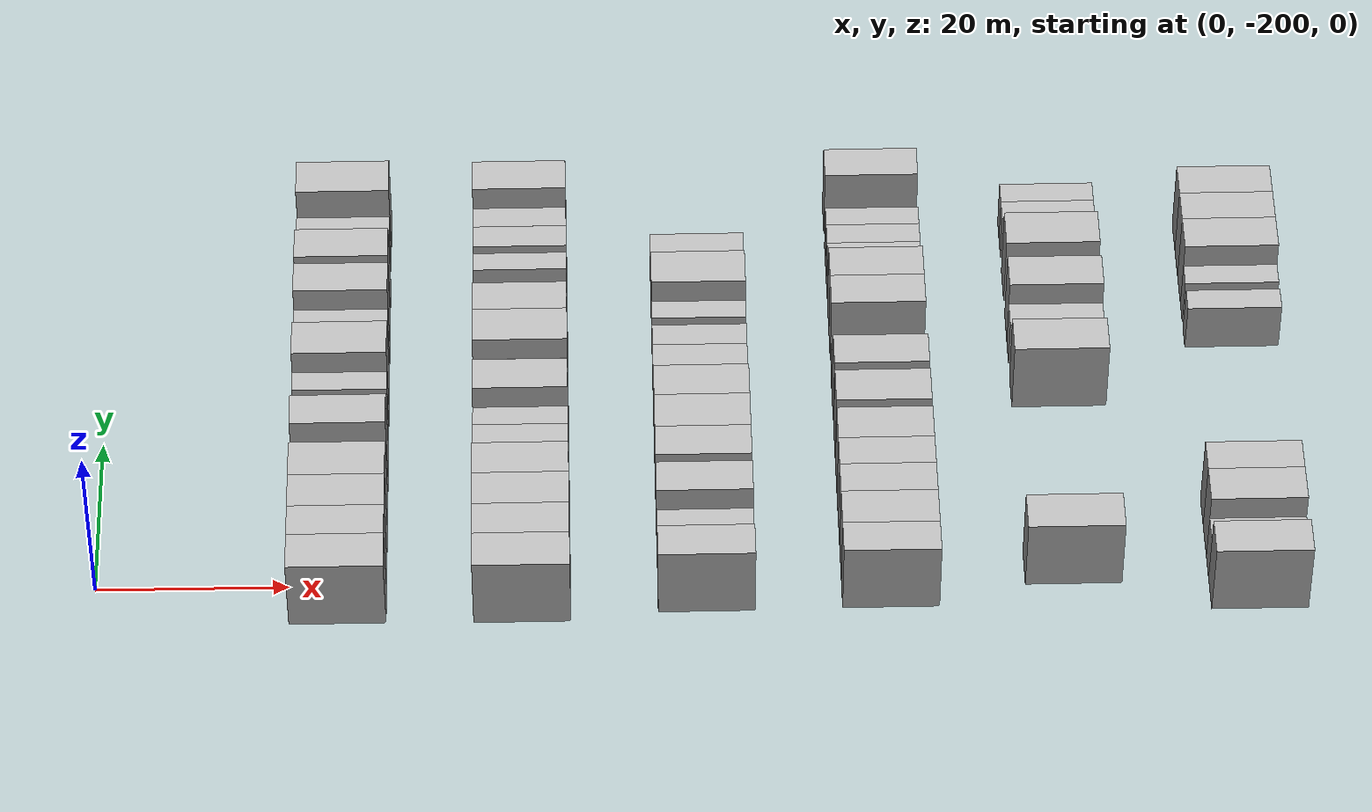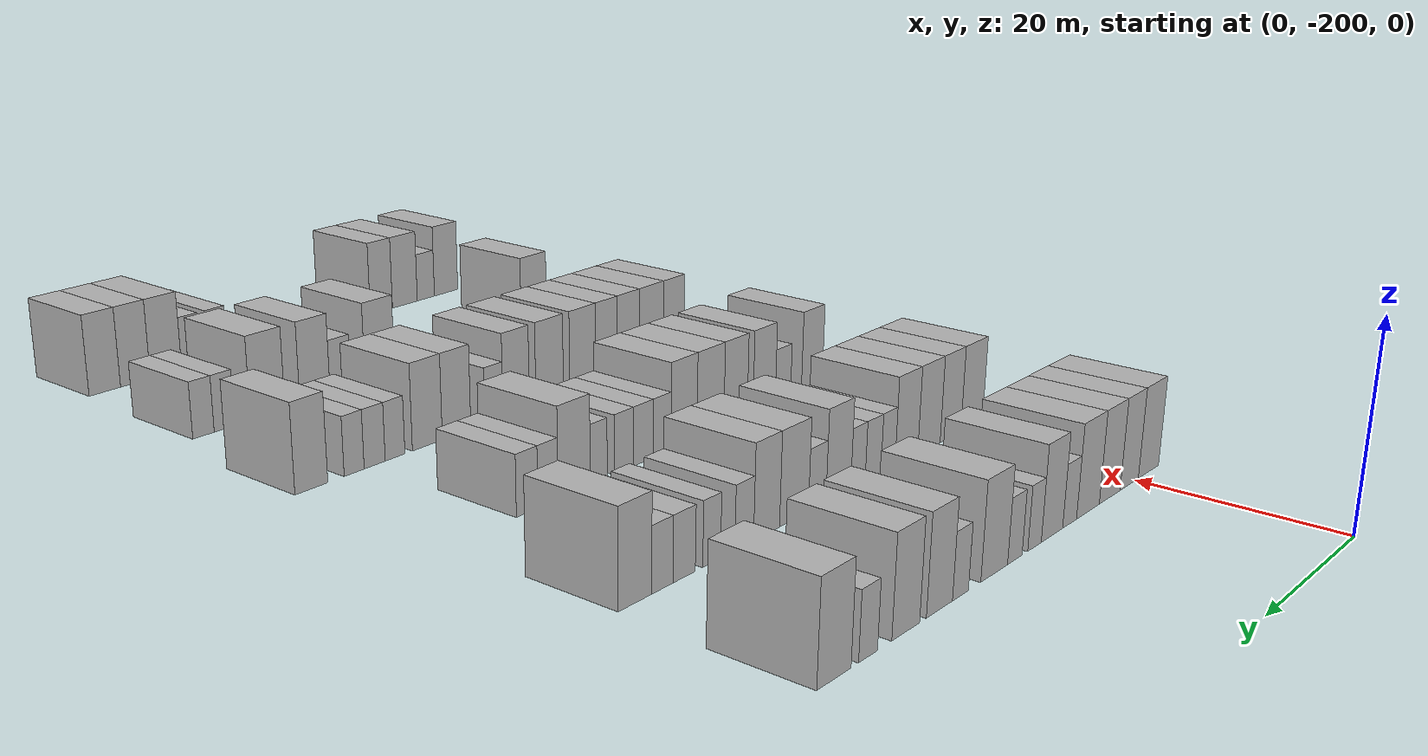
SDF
<sdf version="1.6">
 <world name="default">
  <model name="building_32">
   <static>1</static>
   <pose>25.0000 -202.8057 0 0.000000 0.000000 0.000000</pose>
   <link name="link">
    <pose>0 0 4.50 0 0 0</pose>
    <collision name="collision"><geometry><box><size>10.0000 4.4438 9.0000</size></box></geometry></collision>
    <visual name="visual">
     <cast_shadows>0</cast_shadows>
     <geometry><box><size>10.0000 4.4438 9.0000</size></box></geometry>
     <material>
      <script>
       <uri>model://HANNAS_wall/materials/scripts</uri>
       <uri>model://HANNAS_wall/materials/textures</uri>
       <name>vrc/HANNAS_wall</name>
      </script>
     </material>
    </visual>
   </link>
  </model>
  <model name="building_33">
   <static>1</static>
   <pose>25.0000 -198.6447 0 0.000000 0.000000 0.000000</pose>
   <link name="link">
    <pose>0 0 4.50 0 0 0</pose>
    <collision name="collision"><geometry><box><size>10.0000 3.8781 9.0000</size></box></geometry></collision>
    <visual name="visual">
     <cast_shadows>0</cast_shadows>
     <geometry><box><size>10.0000 3.8781 9.0000</size></box></geometry>
     <material>
      <script>
       <uri>model://HANNAS_wall/materials/scripts</uri>
       <uri>model://HANNAS_wall/materials/textures</uri>
       <name>vrc/HANNAS_wall</name>
      </script>
     </material>
    </visual>
   </link>
  </model>
  <model name="building_34">
   <static>1</static>
   <pose>25.0000 -194.5778 0 0.000000 0.000000 0.000000</pose>
   <link name="link">
    <pose>0 0 4.50 0 0 0</pose>
    <collision name="collision"><geometry><box><size>10.0000 4.2557 9.0000</size></box></geometry></collision>
    <visual name="visual">
     <cast_shadows>0</cast_shadows>
     <geometry><box><size>10.0000 4.2557 9.0000</size></box></geometry>
     <material>
      <script>
       <uri>model://HANNAS_wall/materials/scripts</uri>
       <uri>model://HANNAS_wall/materials/textures</uri>
       <name>vrc/HANNAS_wall</name>
      </script>
     </material>
    </visual>
   </link>
  </model>
  <model name="building_35">
   <static>1</static>
   <pose>25.0000 -190.2086 0 0.000000 0.000000 0.000000</pose>
   <link name="link">
    <pose>0 0 4.50 0 0 0</pose>
    <collision name="collision"><geometry><box><size>10.0000 4.4829 9.0000</size></box></geometry></collision>
    <visual name="visual">
     <cast_shadows>0</cast_shadows>
     <geometry><box><size>10.0000 4.4829 9.0000</size></box></geometry>
     <material>
      <script>
       <uri>model://HANNAS_wall/materials/scripts</uri>
       <uri>model://HANNAS_wall/materials/textures</uri>
       <name>vrc/HANNAS_wall</name>
      </script>
     </material>
    </visual>
   </link>
  </model>
  <model name="building_36">
   <static>1</static>
   <pose>25.0000 -186.6460 0 0.000000 0.000000 0.000000</pose>
   <link name="link">
    <pose>0 0 3.00 0 0 0</pose>
    <collision name="collision"><geometry><box><size>10.0000 2.6423 6.0000</size></box></geometry></collision>
    <visual name="visual">
     <cast_shadows>0</cast_shadows>
     <geometry><box><size>10.0000 2.6423 6.0000</size></box></geometry>
     <material>
      <script>
       <uri>model://HANNAS_wall/materials/scripts</uri>
       <uri>model://HANNAS_wall/materials/textures</uri>
       <name>vrc/HANNAS_wall</name>
      </script>
     </material>
    </visual>
   </link>
  </model>
  <model name="building_37">
   <static>1</static>
   <pose>25.0000 -183.3531 0 0.000000 0.000000 0.000000</pose>
   <link name="link">
    <pose>0 0 4.50 0 0 0</pose>
    <collision name="collision"><geometry><box><size>10.0000 3.9435 9.0000</size></box></geometry></collision>
    <visual name="visual">
     <cast_shadows>0</cast_shadows>
     <geometry><box><size>10.0000 3.9435 9.0000</size></box></geometry>
     <material>
      <script>
       <uri>model://HANNAS_wall/materials/scripts</uri>
       <uri>model://HANNAS_wall/materials/textures</uri>
       <name>vrc/HANNAS_wall</name>
      </script>
     </material>
    </visual>
   </link>
  </model>
  <model name="building_38">
   <static>1</static>
   <pose>25.0000 -180.1705 0 0.000000 0.000000 0.000000</pose>
   <link name="link">
    <pose>0 0 3.00 0 0 0</pose>
    <collision name="collision"><geometry><box><size>10.0000 2.4218 6.0000</size></box></geometry></collision>
    <visual name="visual">
     <cast_shadows>0</cast_shadows>
     <geometry><box><size>10.0000 2.4218 6.0000</size></box></geometry>
     <material>
      <script>
       <uri>model://HANNAS_wall/materials/scripts</uri>
       <uri>model://HANNAS_wall/materials/textures</uri>
       <name>vrc/HANNAS_wall</name>
      </script>
     </material>
    </visual>
   </link>
  </model>
  <model name="building_39">
   <static>1</static>
   <pose>25.0000 -176.7080 0 0.000000 0.000000 0.000000</pose>
   <link name="link">
    <pose>0 0 3.00 0 0 0</pose>
    <collision name="collision"><geometry><box><size>10.0000 2.5031 6.0000</size></box></geometry></collision>
    <visual name="visual">
     <cast_shadows>0</cast_shadows>
     <geometry><box><size>10.0000 2.5031 6.0000</size></box></geometry>
     <material>
      <script>
       <uri>model://HANNAS_wall/materials/scripts</uri>
       <uri>model://HANNAS_wall/materials/textures</uri>
       <name>vrc/HANNAS_wall</name>
      </script>
     </material>
    </visual>
   </link>
  </model>
  <model name="building_40">
   <static>1</static>
   <pose>25.0000 -173.2176 0 0.000000 0.000000 0.000000</pose>
   <link name="link">
    <pose>0 0 4.50 0 0 0</pose>
    <collision name="collision"><geometry><box><size>10.0000 4.4778 9.0000</size></box></geometry></collision>
    <visual name="visual">
     <cast_shadows>0</cast_shadows>
     <geometry><box><size>10.0000 4.4778 9.0000</size></box></geometry>
     <material>
      <script>
       <uri>model://HANNAS_wall/materials/scripts</uri>
       <uri>model://HANNAS_wall/materials/textures</uri>
       <name>vrc/HANNAS_wall</name>
      </script>
     </material>
    </visual>
   </link>
  </model>
  <model name="building_41">
   <static>1</static>
   <pose>25.0000 -167.7174 0 0.000000 0.000000 0.000000</pose>
   <link name="link">
    <pose>0 0 3.00 0 0 0</pose>
    <collision name="collision"><geometry><box><size>10.0000 2.5224 6.0000</size></box></geometry></collision>
    <visual name="visual">
     <cast_shadows>0</cast_shadows>
     <geometry><box><size>10.0000 2.5224 6.0000</size></box></geometry>
     <material>
      <script>
       <uri>model://HANNAS_wall/materials/scripts</uri>
       <uri>model://HANNAS_wall/materials/textures</uri>
       <name>vrc/HANNAS_wall</name>
      </script>
     </material>
    </visual>
   </link>
  </model>
  <model name="building_42">
   <static>1</static>
   <pose>25.0000 -164.4643 0 0.000000 0.000000 0.000000</pose>
   <link name="link">
    <pose>0 0 4.50 0 0 0</pose>
    <collision name="collision"><geometry><box><size>10.0000 3.9839 9.0000</size></box></geometry></collision>
    <visual name="visual">
     <cast_shadows>0</cast_shadows>
     <geometry><box><size>10.0000 3.9839 9.0000</size></box></geometry>
     <material>
      <script>
       <uri>model://HANNAS_wall/materials/scripts</uri>
       <uri>model://HANNAS_wall/materials/textures</uri>
       <name>vrc/HANNAS_wall</name>
      </script>
     </material>
    </visual>
   </link>
  </model>
  <model name="building_43">
   <static>1</static>
   <pose>25.0000 -159.4540 0 0.000000 0.000000 0.000000</pose>
   <link name="link">
    <pose>0 0 4.50 0 0 0</pose>
    <collision name="collision"><geometry><box><size>10.0000 4.0367 9.0000</size></box></geometry></collision>
    <visual name="visual">
     <cast_shadows>0</cast_shadows>
     <geometry><box><size>10.0000 4.0367 9.0000</size></box></geometry>
     <material>
      <script>
       <uri>model://HANNAS_wall/materials/scripts</uri>
       <uri>model://HANNAS_wall/materials/textures</uri>
       <name>vrc/HANNAS_wall</name>
      </script>
     </material>
    </visual>
   </link>
  </model>
  <model name="building_44">
   <static>1</static>
   <pose>25.0000 -154.1404 0 0.000000 0.000000 0.000000</pose>
   <link name="link">
    <pose>0 0 3.00 0 0 0</pose>
    <collision name="collision"><geometry><box><size>10.0000 2.5905 6.0000</size></box></geometry></collision>
    <visual name="visual">
     <cast_shadows>0</cast_shadows>
     <geometry><box><size>10.0000 2.5905 6.0000</size></box></geometry>
     <material>
      <script>
       <uri>model://HANNAS_wall/materials/scripts</uri>
       <uri>model://HANNAS_wall/materials/textures</uri>
       <name>vrc/HANNAS_wall</name>
      </script>
     </material>
    </visual>
   </link>
  </model>
  <model name="building_45">
   <static>1</static>
   <pose>25.0000 -149.6113 0 0.000000 0.000000 0.000000</pose>
   <link name="link">
    <pose>0 0 4.50 0 0 0</pose>
    <collision name="collision"><geometry><box><size>10.0000 4.4676 9.0000</size></box></geometry></collision>
    <visual name="visual">
     <cast_shadows>0</cast_shadows>
     <geometry><box><size>10.0000 4.4676 9.0000</size></box></geometry>
     <material>
      <script>
       <uri>model://HANNAS_wall/materials/scripts</uri>
       <uri>model://HANNAS_wall/materials/textures</uri>
       <name>vrc/HANNAS_wall</name>
      </script>
     </material>
    </visual>
   </link>
  </model>
  <model name="building_203">
   <static>1</static>
   <pose>44.0000 -203.0249 0 0.000000 0.000000 0.000000</pose>
   <link name="link">
    <pose>0 0 4.50 0 0 0</pose>
    <collision name="collision"><geometry><box><size>10.0000 4.3794 9.0000</size></box></geometry></collision>
    <visual name="visual">
     <cast_shadows>0</cast_shadows>
     <geometry><box><size>10.0000 4.3794 9.0000</size></box></geometry>
     <material>
      <script>
       <uri>model://HANNAS_wall/materials/scripts</uri>
       <uri>model://HANNAS_wall/materials/textures</uri>
       <name>vrc/HANNAS_wall</name>
      </script>
     </material>
    </visual>
   </link>
  </model>
  <model name="building_204">
   <static>1</static>
   <pose>44.0000 -198.8220 0 0.000000 0.000000 0.000000</pose>
   <link name="link">
    <pose>0 0 4.50 0 0 0</pose>
    <collision name="collision"><geometry><box><size>10.0000 4.0264 9.0000</size></box></geometry></collision>
    <visual name="visual">
     <cast_shadows>0</cast_shadows>
     <geometry><box><size>10.0000 4.0264 9.0000</size></box></geometry>
     <material>
      <script>
       <uri>model://HANNAS_wall/materials/scripts</uri>
       <uri>model://HANNAS_wall/materials/textures</uri>
       <name>vrc/HANNAS_wall</name>
      </script>
     </material>
    </visual>
   </link>
  </model>
  <model name="building_205">
   <static>1</static>
   <pose>44.0000 -194.6963 0 0.000000 0.000000 0.000000</pose>
   <link name="link">
    <pose>0 0 4.50 0 0 0</pose>
    <collision name="collision"><geometry><box><size>10.0000 4.2250 9.0000</size></box></geometry></collision>
    <visual name="visual">
     <cast_shadows>0</cast_shadows>
     <geometry><box><size>10.0000 4.2250 9.0000</size></box></geometry>
     <material>
      <script>
       <uri>model://HANNAS_wall/materials/scripts</uri>
       <uri>model://HANNAS_wall/materials/textures</uri>
       <name>vrc/HANNAS_wall</name>
      </script>
     </material>
    </visual>
   </link>
  </model>
  <model name="building_206">
   <static>1</static>
   <pose>44.0000 -190.5144 0 0.000000 0.000000 0.000000</pose>
   <link name="link">
    <pose>0 0 4.50 0 0 0</pose>
    <collision name="collision"><geometry><box><size>10.0000 4.1388 9.0000</size></box></geometry></collision>
    <visual name="visual">
     <cast_shadows>0</cast_shadows>
     <geometry><box><size>10.0000 4.1388 9.0000</size></box></geometry>
     <material>
      <script>
       <uri>model://HANNAS_wall/materials/scripts</uri>
       <uri>model://HANNAS_wall/materials/textures</uri>
       <name>vrc/HANNAS_wall</name>
      </script>
     </material>
    </visual>
   </link>
  </model>
  <model name="building_207">
   <static>1</static>
   <pose>44.0000 -187.1969 0 0.000000 0.000000 0.000000</pose>
   <link name="link">
    <pose>0 0 3.00 0 0 0</pose>
    <collision name="collision"><geometry><box><size>10.0000 2.4963 6.0000</size></box></geometry></collision>
    <visual name="visual">
     <cast_shadows>0</cast_shadows>
     <geometry><box><size>10.0000 2.4963 6.0000</size></box></geometry>
     <material>
      <script>
       <uri>model://HANNAS_wall/materials/scripts</uri>
       <uri>model://HANNAS_wall/materials/textures</uri>
       <name>vrc/HANNAS_wall</name>
      </script>
     </material>
    </visual>
   </link>
  </model>
  <model name="building_208">
   <static>1</static>
   <pose>44.0000 -184.5957 0 0.000000 0.000000 0.000000</pose>
   <link name="link">
    <pose>0 0 3.00 0 0 0</pose>
    <collision name="collision"><geometry><box><size>10.0000 2.7060 6.0000</size></box></geometry></collision>
    <visual name="visual">
     <cast_shadows>0</cast_shadows>
     <geometry><box><size>10.0000 2.7060 6.0000</size></box></geometry>
     <material>
      <script>
       <uri>model://HANNAS_wall/materials/scripts</uri>
       <uri>model://HANNAS_wall/materials/textures</uri>
       <name>vrc/HANNAS_wall</name>
      </script>
     </material>
    </visual>
   </link>
  </model>
  <model name="building_209">
   <static>1</static>
   <pose>44.0000 -182.0230 0 0.000000 0.000000 0.000000</pose>
   <link name="link">
    <pose>0 0 3.00 0 0 0</pose>
    <collision name="collision"><geometry><box><size>10.0000 2.4394 6.0000</size></box></geometry></collision>
    <visual name="visual">
     <cast_shadows>0</cast_shadows>
     <geometry><box><size>10.0000 2.4394 6.0000</size></box></geometry>
     <material>
      <script>
       <uri>model://HANNAS_wall/materials/scripts</uri>
       <uri>model://HANNAS_wall/materials/textures</uri>
       <name>vrc/HANNAS_wall</name>
      </script>
     </material>
    </visual>
   </link>
  </model>
  <model name="building_210">
   <static>1</static>
   <pose>44.0000 -178.7733 0 0.000000 0.000000 0.000000</pose>
   <link name="link">
    <pose>0 0 4.50 0 0 0</pose>
    <collision name="collision"><geometry><box><size>10.0000 4.0601 9.0000</size></box></geometry></collision>
    <visual name="visual">
     <cast_shadows>0</cast_shadows>
     <geometry><box><size>10.0000 4.0601 9.0000</size></box></geometry>
     <material>
      <script>
       <uri>model://HANNAS_wall/materials/scripts</uri>
       <uri>model://HANNAS_wall/materials/textures</uri>
       <name>vrc/HANNAS_wall</name>
      </script>
     </material>
    </visual>
   </link>
  </model>
  <model name="building_211">
   <static>1</static>
   <pose>44.0000 -175.3541 0 0.000000 0.000000 0.000000</pose>
   <link name="link">
    <pose>0 0 3.00 0 0 0</pose>
    <collision name="collision"><geometry><box><size>10.0000 2.7781 6.0000</size></box></geometry></collision>
    <visual name="visual">
     <cast_shadows>0</cast_shadows>
     <geometry><box><size>10.0000 2.7781 6.0000</size></box></geometry>
     <material>
      <script>
       <uri>model://HANNAS_wall/materials/scripts</uri>
       <uri>model://HANNAS_wall/materials/textures</uri>
       <name>vrc/HANNAS_wall</name>
      </script>
     </material>
    </visual>
   </link>
  </model>
  <model name="building_212">
   <static>1</static>
   <pose>44.0000 -171.7496 0 0.000000 0.000000 0.000000</pose>
   <link name="link">
    <pose>0 0 4.50 0 0 0</pose>
    <collision name="collision"><geometry><box><size>10.0000 4.4309 9.0000</size></box></geometry></collision>
    <visual name="visual">
     <cast_shadows>0</cast_shadows>
     <geometry><box><size>10.0000 4.4309 9.0000</size></box></geometry>
     <material>
      <script>
       <uri>model://HANNAS_wall/materials/scripts</uri>
       <uri>model://HANNAS_wall/materials/textures</uri>
       <name>vrc/HANNAS_wall</name>
      </script>
     </material>
    </visual>
   </link>
  </model>
  <model name="building_213">
   <static>1</static>
   <pose>44.0000 -167.6110 0 0.000000 0.000000 0.000000</pose>
   <link name="link">
    <pose>0 0 4.50 0 0 0</pose>
    <collision name="collision"><geometry><box><size>10.0000 3.8465 9.0000</size></box></geometry></collision>
    <visual name="visual">
     <cast_shadows>0</cast_shadows>
     <geometry><box><size>10.0000 3.8465 9.0000</size></box></geometry>
     <material>
      <script>
       <uri>model://HANNAS_wall/materials/scripts</uri>
       <uri>model://HANNAS_wall/materials/textures</uri>
       <name>vrc/HANNAS_wall</name>
      </script>
     </material>
    </visual>
   </link>
  </model>
  <model name="building_214">
   <static>1</static>
   <pose>44.0000 -164.3447 0 0.000000 0.000000 0.000000</pose>
   <link name="link">
    <pose>0 0 3.00 0 0 0</pose>
    <collision name="collision"><geometry><box><size>10.0000 2.6861 6.0000</size></box></geometry></collision>
    <visual name="visual">
     <cast_shadows>0</cast_shadows>
     <geometry><box><size>10.0000 2.6861 6.0000</size></box></geometry>
     <material>
      <script>
       <uri>model://HANNAS_wall/materials/scripts</uri>
       <uri>model://HANNAS_wall/materials/textures</uri>
       <name>vrc/HANNAS_wall</name>
      </script>
     </material>
    </visual>
   </link>
  </model>
  <model name="building_215">
   <static>1</static>
   <pose>44.0000 -159.7819 0 0.000000 0.000000 0.000000</pose>
   <link name="link">
    <pose>0 0 3.00 0 0 0</pose>
    <collision name="collision"><geometry><box><size>10.0000 2.4393 6.0000</size></box></geometry></collision>
    <visual name="visual">
     <cast_shadows>0</cast_shadows>
     <geometry><box><size>10.0000 2.4393 6.0000</size></box></geometry>
     <material>
      <script>
       <uri>model://HANNAS_wall/materials/scripts</uri>
       <uri>model://HANNAS_wall/materials/textures</uri>
       <name>vrc/HANNAS_wall</name>
      </script>
     </material>
    </visual>
   </link>
  </model>
  <model name="building_216">
   <static>1</static>
   <pose>44.0000 -156.0849 0 0.000000 0.000000 0.000000</pose>
   <link name="link">
    <pose>0 0 3.00 0 0 0</pose>
    <collision name="collision"><geometry><box><size>10.0000 2.9549 6.0000</size></box></geometry></collision>
    <visual name="visual">
     <cast_shadows>0</cast_shadows>
     <geometry><box><size>10.0000 2.9549 6.0000</size></box></geometry>
     <material>
      <script>
       <uri>model://HANNAS_wall/materials/scripts</uri>
       <uri>model://HANNAS_wall/materials/textures</uri>
       <name>vrc/HANNAS_wall</name>
      </script>
     </material>
    </visual>
   </link>
  </model>
  <model name="building_217">
   <static>1</static>
   <pose>44.0000 -153.2382 0 0.000000 0.000000 0.000000</pose>
   <link name="link">
    <pose>0 0 3.00 0 0 0</pose>
    <collision name="collision"><geometry><box><size>10.0000 2.7384 6.0000</size></box></geometry></collision>
    <visual name="visual">
     <cast_shadows>0</cast_shadows>
     <geometry><box><size>10.0000 2.7384 6.0000</size></box></geometry>
     <material>
      <script>
       <uri>model://HANNAS_wall/materials/scripts</uri>
       <uri>model://HANNAS_wall/materials/textures</uri>
       <name>vrc/HANNAS_wall</name>
      </script>
     </material>
    </visual>
   </link>
  </model>
  <model name="building_218">
   <static>1</static>
   <pose>44.0000 -149.8097 0 0.000000 0.000000 0.000000</pose>
   <link name="link">
    <pose>0 0 4.50 0 0 0</pose>
    <collision name="collision"><geometry><box><size>10.0000 4.1187 9.0000</size></box></geometry></collision>
    <visual name="visual">
     <cast_shadows>0</cast_shadows>
     <geometry><box><size>10.0000 4.1187 9.0000</size></box></geometry>
     <material>
      <script>
       <uri>model://HANNAS_wall/materials/scripts</uri>
       <uri>model://HANNAS_wall/materials/textures</uri>
       <name>vrc/HANNAS_wall</name>
      </script>
     </material>
    </visual>
   </link>
  </model>
  <model name="building_366">
   <static>1</static>
   <pose>63.0000 -202.2333 0 0.000000 0.000000 0.000000</pose>
   <link name="link">
    <pose>0 0 4.50 0 0 0</pose>
    <collision name="collision"><geometry><box><size>10.0000 3.9475 9.0000</size></box></geometry></collision>
    <visual name="visual">
     <cast_shadows>0</cast_shadows>
     <geometry><box><size>10.0000 3.9475 9.0000</size></box></geometry>
     <material>
      <script>
       <uri>model://HANNAS_wall/materials/scripts</uri>
       <uri>model://HANNAS_wall/materials/textures</uri>
       <name>vrc/HANNAS_wall</name>
      </script>
     </material>
    </visual>
   </link>
  </model>
  <model name="building_367">
   <static>1</static>
   <pose>63.0000 -196.8638 0 0.000000 0.000000 0.000000</pose>
   <link name="link">
    <pose>0 0 3.00 0 0 0</pose>
    <collision name="collision"><geometry><box><size>10.0000 2.7915 6.0000</size></box></geometry></collision>
    <visual name="visual">
     <cast_shadows>0</cast_shadows>
     <geometry><box><size>10.0000 2.7915 6.0000</size></box></geometry>
     <material>
      <script>
       <uri>model://HANNAS_wall/materials/scripts</uri>
       <uri>model://HANNAS_wall/materials/textures</uri>
       <name>vrc/HANNAS_wall</name>
      </script>
     </material>
    </visual>
   </link>
  </model>
  <model name="building_368">
   <static>1</static>
   <pose>63.0000 -193.4971 0 0.000000 0.000000 0.000000</pose>
   <link name="link">
    <pose>0 0 4.50 0 0 0</pose>
    <collision name="collision"><geometry><box><size>10.0000 3.9419 9.0000</size></box></geometry></collision>
    <visual name="visual">
     <cast_shadows>0</cast_shadows>
     <geometry><box><size>10.0000 3.9419 9.0000</size></box></geometry>
     <material>
      <script>
       <uri>model://HANNAS_wall/materials/scripts</uri>
       <uri>model://HANNAS_wall/materials/textures</uri>
       <name>vrc/HANNAS_wall</name>
      </script>
     </material>
    </visual>
   </link>
  </model>
  <model name="building_369">
   <static>1</static>
   <pose>63.0000 -188.5421 0 0.000000 0.000000 0.000000</pose>
   <link name="link">
    <pose>0 0 4.50 0 0 0</pose>
    <collision name="collision"><geometry><box><size>10.0000 3.9681 9.0000</size></box></geometry></collision>
    <visual name="visual">
     <cast_shadows>0</cast_shadows>
     <geometry><box><size>10.0000 3.9681 9.0000</size></box></geometry>
     <material>
      <script>
       <uri>model://HANNAS_wall/materials/scripts</uri>
       <uri>model://HANNAS_wall/materials/textures</uri>
       <name>vrc/HANNAS_wall</name>
      </script>
     </material>
    </visual>
   </link>
  </model>
  <model name="building_370">
   <static>1</static>
   <pose>63.0000 -184.3372 0 0.000000 0.000000 0.000000</pose>
   <link name="link">
    <pose>0 0 4.50 0 0 0</pose>
    <collision name="collision"><geometry><box><size>10.0000 4.4418 9.0000</size></box></geometry></collision>
    <visual name="visual">
     <cast_shadows>0</cast_shadows>
     <geometry><box><size>10.0000 4.4418 9.0000</size></box></geometry>
     <material>
      <script>
       <uri>model://HANNAS_wall/materials/scripts</uri>
       <uri>model://HANNAS_wall/materials/textures</uri>
       <name>vrc/HANNAS_wall</name>
      </script>
     </material>
    </visual>
   </link>
  </model>
  <model name="building_371">
   <static>1</static>
   <pose>63.0000 -180.0531 0 0.000000 0.000000 0.000000</pose>
   <link name="link">
    <pose>0 0 4.50 0 0 0</pose>
    <collision name="collision"><geometry><box><size>10.0000 4.1262 9.0000</size></box></geometry></collision>
    <visual name="visual">
     <cast_shadows>0</cast_shadows>
     <geometry><box><size>10.0000 4.1262 9.0000</size></box></geometry>
     <material>
      <script>
       <uri>model://HANNAS_wall/materials/scripts</uri>
       <uri>model://HANNAS_wall/materials/textures</uri>
       <name>vrc/HANNAS_wall</name>
      </script>
     </material>
    </visual>
   </link>
  </model>
  <model name="building_372">
   <static>1</static>
   <pose>63.0000 -176.6253 0 0.000000 0.000000 0.000000</pose>
   <link name="link">
    <pose>0 0 3.00 0 0 0</pose>
    <collision name="collision"><geometry><box><size>10.0000 2.7295 6.0000</size></box></geometry></collision>
    <visual name="visual">
     <cast_shadows>0</cast_shadows>
     <geometry><box><size>10.0000 2.7295 6.0000</size></box></geometry>
     <material>
      <script>
       <uri>model://HANNAS_wall/materials/scripts</uri>
       <uri>model://HANNAS_wall/materials/textures</uri>
       <name>vrc/HANNAS_wall</name>
      </script>
     </material>
    </visual>
   </link>
  </model>
  <model name="building_373">
   <static>1</static>
   <pose>63.0000 -173.7783 0 0.000000 0.000000 0.000000</pose>
   <link name="link">
    <pose>0 0 3.00 0 0 0</pose>
    <collision name="collision"><geometry><box><size>10.0000 2.9644 6.0000</size></box></geometry></collision>
    <visual name="visual">
     <cast_shadows>0</cast_shadows>
     <geometry><box><size>10.0000 2.9644 6.0000</size></box></geometry>
     <material>
      <script>
       <uri>model://HANNAS_wall/materials/scripts</uri>
       <uri>model://HANNAS_wall/materials/textures</uri>
       <name>vrc/HANNAS_wall</name>
      </script>
     </material>
    </visual>
   </link>
  </model>
  <model name="building_374">
   <static>1</static>
   <pose>63.0000 -170.8783 0 0.000000 0.000000 0.000000</pose>
   <link name="link">
    <pose>0 0 3.00 0 0 0</pose>
    <collision name="collision"><geometry><box><size>10.0000 2.8356 6.0000</size></box></geometry></collision>
    <visual name="visual">
     <cast_shadows>0</cast_shadows>
     <geometry><box><size>10.0000 2.8356 6.0000</size></box></geometry>
     <material>
      <script>
       <uri>model://HANNAS_wall/materials/scripts</uri>
       <uri>model://HANNAS_wall/materials/textures</uri>
       <name>vrc/HANNAS_wall</name>
      </script>
     </material>
    </visual>
   </link>
  </model>
  <model name="building_375">
   <static>1</static>
   <pose>63.0000 -167.2489 0 0.000000 0.000000 0.000000</pose>
   <link name="link">
    <pose>0 0 3.00 0 0 0</pose>
    <collision name="collision"><geometry><box><size>10.0000 2.4234 6.0000</size></box></geometry></collision>
    <visual name="visual">
     <cast_shadows>0</cast_shadows>
     <geometry><box><size>10.0000 2.4234 6.0000</size></box></geometry>
     <material>
      <script>
       <uri>model://HANNAS_wall/materials/scripts</uri>
       <uri>model://HANNAS_wall/materials/textures</uri>
       <name>vrc/HANNAS_wall</name>
      </script>
     </material>
    </visual>
   </link>
  </model>
  <model name="building_376">
   <static>1</static>
   <pose>63.0000 -163.8189 0 0.000000 0.000000 0.000000</pose>
   <link name="link">
    <pose>0 0 4.50 0 0 0</pose>
    <collision name="collision"><geometry><box><size>10.0000 4.4367 9.0000</size></box></geometry></collision>
    <visual name="visual">
     <cast_shadows>0</cast_shadows>
     <geometry><box><size>10.0000 4.4367 9.0000</size></box></geometry>
     <material>
      <script>
       <uri>model://HANNAS_wall/materials/scripts</uri>
       <uri>model://HANNAS_wall/materials/textures</uri>
       <name>vrc/HANNAS_wall</name>
      </script>
     </material>
    </visual>
   </link>
  </model>
  <model name="building_377">
   <static>1</static>
   <pose>63.0000 -160.2628 0 0.000000 0.000000 0.000000</pose>
   <link name="link">
    <pose>0 0 3.00 0 0 0</pose>
    <collision name="collision"><geometry><box><size>10.0000 2.6754 6.0000</size></box></geometry></collision>
    <visual name="visual">
     <cast_shadows>0</cast_shadows>
     <geometry><box><size>10.0000 2.6754 6.0000</size></box></geometry>
     <material>
      <script>
       <uri>model://HANNAS_wall/materials/scripts</uri>
       <uri>model://HANNAS_wall/materials/textures</uri>
       <name>vrc/HANNAS_wall</name>
      </script>
     </material>
    </visual>
   </link>
  </model>
  <model name="building_378">
   <static>1</static>
   <pose>63.0000 -157.5310 0 0.000000 0.000000 0.000000</pose>
   <link name="link">
    <pose>0 0 3.00 0 0 0</pose>
    <collision name="collision"><geometry><box><size>10.0000 2.7882 6.0000</size></box></geometry></collision>
    <visual name="visual">
     <cast_shadows>0</cast_shadows>
     <geometry><box><size>10.0000 2.7882 6.0000</size></box></geometry>
     <material>
      <script>
       <uri>model://HANNAS_wall/materials/scripts</uri>
       <uri>model://HANNAS_wall/materials/textures</uri>
       <name>vrc/HANNAS_wall</name>
      </script>
     </material>
    </visual>
   </link>
  </model>
  <model name="building_545">
   <static>1</static>
   <pose>82.0000 -202.1658 0 0.000000 0.000000 0.000000</pose>
   <link name="link">
    <pose>0 0 4.50 0 0 0</pose>
    <collision name="collision"><geometry><box><size>10.0000 3.8075 9.0000</size></box></geometry></collision>
    <visual name="visual">
     <cast_shadows>0</cast_shadows>
     <geometry><box><size>10.0000 3.8075 9.0000</size></box></geometry>
     <material>
      <script>
       <uri>model://HANNAS_wall/materials/scripts</uri>
       <uri>model://HANNAS_wall/materials/textures</uri>
       <name>vrc/HANNAS_wall</name>
      </script>
     </material>
    </visual>
   </link>
  </model>
  <model name="building_546">
   <static>1</static>
   <pose>82.0000 -198.1142 0 0.000000 0.000000 0.000000</pose>
   <link name="link">
    <pose>0 0 4.50 0 0 0</pose>
    <collision name="collision"><geometry><box><size>10.0000 4.2955 9.0000</size></box></geometry></collision>
    <visual name="visual">
     <cast_shadows>0</cast_shadows>
     <geometry><box><size>10.0000 4.2955 9.0000</size></box></geometry>
     <material>
      <script>
       <uri>model://HANNAS_wall/materials/scripts</uri>
       <uri>model://HANNAS_wall/materials/textures</uri>
       <name>vrc/HANNAS_wall</name>
      </script>
     </material>
    </visual>
   </link>
  </model>
  <model name="building_547">
   <static>1</static>
   <pose>82.0000 -194.0944 0 0.000000 0.000000 0.000000</pose>
   <link name="link">
    <pose>0 0 4.50 0 0 0</pose>
    <collision name="collision"><geometry><box><size>10.0000 3.7442 9.0000</size></box></geometry></collision>
    <visual name="visual">
     <cast_shadows>0</cast_shadows>
     <geometry><box><size>10.0000 3.7442 9.0000</size></box></geometry>
     <material>
      <script>
       <uri>model://HANNAS_wall/materials/scripts</uri>
       <uri>model://HANNAS_wall/materials/textures</uri>
       <name>vrc/HANNAS_wall</name>
      </script>
     </material>
    </visual>
   </link>
  </model>
  <model name="building_548">
   <static>1</static>
   <pose>82.0000 -190.4050 0 0.000000 0.000000 0.000000</pose>
   <link name="link">
    <pose>0 0 4.50 0 0 0</pose>
    <collision name="collision"><geometry><box><size>10.0000 3.6348 9.0000</size></box></geometry></collision>
    <visual name="visual">
     <cast_shadows>0</cast_shadows>
     <geometry><box><size>10.0000 3.6348 9.0000</size></box></geometry>
     <material>
      <script>
       <uri>model://HANNAS_wall/materials/scripts</uri>
       <uri>model://HANNAS_wall/materials/textures</uri>
       <name>vrc/HANNAS_wall</name>
      </script>
     </material>
    </visual>
   </link>
  </model>
  <model name="building_549">
   <static>1</static>
   <pose>82.0000 -186.4735 0 0.000000 0.000000 0.000000</pose>
   <link name="link">
    <pose>0 0 4.50 0 0 0</pose>
    <collision name="collision"><geometry><box><size>10.0000 4.2282 9.0000</size></box></geometry></collision>
    <visual name="visual">
     <cast_shadows>0</cast_shadows>
     <geometry><box><size>10.0000 4.2282 9.0000</size></box></geometry>
     <material>
      <script>
       <uri>model://HANNAS_wall/materials/scripts</uri>
       <uri>model://HANNAS_wall/materials/textures</uri>
       <name>vrc/HANNAS_wall</name>
      </script>
     </material>
    </visual>
   </link>
  </model>
  <model name="building_550">
   <static>1</static>
   <pose>82.0000 -181.2136 0 0.000000 0.000000 0.000000</pose>
   <link name="link">
    <pose>0 0 4.50 0 0 0</pose>
    <collision name="collision"><geometry><box><size>10.0000 4.2916 9.0000</size></box></geometry></collision>
    <visual name="visual">
     <cast_shadows>0</cast_shadows>
     <geometry><box><size>10.0000 4.2916 9.0000</size></box></geometry>
     <material>
      <script>
       <uri>model://HANNAS_wall/materials/scripts</uri>
       <uri>model://HANNAS_wall/materials/textures</uri>
       <name>vrc/HANNAS_wall</name>
      </script>
     </material>
    </visual>
   </link>
  </model>
  <model name="building_551">
   <static>1</static>
   <pose>82.0000 -176.0914 0 0.000000 0.000000 0.000000</pose>
   <link name="link">
    <pose>0 0 4.50 0 0 0</pose>
    <collision name="collision"><geometry><box><size>10.0000 3.9528 9.0000</size></box></geometry></collision>
    <visual name="visual">
     <cast_shadows>0</cast_shadows>
     <geometry><box><size>10.0000 3.9528 9.0000</size></box></geometry>
     <material>
      <script>
       <uri>model://HANNAS_wall/materials/scripts</uri>
       <uri>model://HANNAS_wall/materials/textures</uri>
       <name>vrc/HANNAS_wall</name>
      </script>
     </material>
    </visual>
   </link>
  </model>
  <model name="building_552">
   <static>1</static>
   <pose>82.0000 -172.7834 0 0.000000 0.000000 0.000000</pose>
   <link name="link">
    <pose>0 0 3.00 0 0 0</pose>
    <collision name="collision"><geometry><box><size>10.0000 2.6631 6.0000</size></box></geometry></collision>
    <visual name="visual">
     <cast_shadows>0</cast_shadows>
     <geometry><box><size>10.0000 2.6631 6.0000</size></box></geometry>
     <material>
      <script>
       <uri>model://HANNAS_wall/materials/scripts</uri>
       <uri>model://HANNAS_wall/materials/textures</uri>
       <name>vrc/HANNAS_wall</name>
      </script>
     </material>
    </visual>
   </link>
  </model>
  <model name="building_553">
   <static>1</static>
   <pose>82.0000 -167.4585 0 0.000000 0.000000 0.000000</pose>
   <link name="link">
    <pose>0 0 4.50 0 0 0</pose>
    <collision name="collision"><geometry><box><size>10.0000 3.9868 9.0000</size></box></geometry></collision>
    <visual name="visual">
     <cast_shadows>0</cast_shadows>
     <geometry><box><size>10.0000 3.9868 9.0000</size></box></geometry>
     <material>
      <script>
       <uri>model://HANNAS_wall/materials/scripts</uri>
       <uri>model://HANNAS_wall/materials/textures</uri>
       <name>vrc/HANNAS_wall</name>
      </script>
     </material>
    </visual>
   </link>
  </model>
  <model name="building_554">
   <static>1</static>
   <pose>82.0000 -163.4401 0 0.000000 0.000000 0.000000</pose>
   <link name="link">
    <pose>0 0 4.50 0 0 0</pose>
    <collision name="collision"><geometry><box><size>10.0000 4.0499 9.0000</size></box></geometry></collision>
    <visual name="visual">
     <cast_shadows>0</cast_shadows>
     <geometry><box><size>10.0000 4.0499 9.0000</size></box></geometry>
     <material>
      <script>
       <uri>model://HANNAS_wall/materials/scripts</uri>
       <uri>model://HANNAS_wall/materials/textures</uri>
       <name>vrc/HANNAS_wall</name>
      </script>
     </material>
    </visual>
   </link>
  </model>
  <model name="building_555">
   <static>1</static>
   <pose>82.0000 -159.1333 0 0.000000 0.000000 0.000000</pose>
   <link name="link">
    <pose>0 0 3.00 0 0 0</pose>
    <collision name="collision"><geometry><box><size>10.0000 2.5637 6.0000</size></box></geometry></collision>
    <visual name="visual">
     <cast_shadows>0</cast_shadows>
     <geometry><box><size>10.0000 2.5637 6.0000</size></box></geometry>
     <material>
      <script>
       <uri>model://HANNAS_wall/materials/scripts</uri>
       <uri>model://HANNAS_wall/materials/textures</uri>
       <name>vrc/HANNAS_wall</name>
      </script>
     </material>
    </visual>
   </link>
  </model>
  <model name="building_556">
   <static>1</static>
   <pose>82.0000 -156.5078 0 0.000000 0.000000 0.000000</pose>
   <link name="link">
    <pose>0 0 3.00 0 0 0</pose>
    <collision name="collision"><geometry><box><size>10.0000 2.6872 6.0000</size></box></geometry></collision>
    <visual name="visual">
     <cast_shadows>0</cast_shadows>
     <geometry><box><size>10.0000 2.6872 6.0000</size></box></geometry>
     <material>
      <script>
       <uri>model://HANNAS_wall/materials/scripts</uri>
       <uri>model://HANNAS_wall/materials/textures</uri>
       <name>vrc/HANNAS_wall</name>
      </script>
     </material>
    </visual>
   </link>
  </model>
  <model name="building_557">
   <static>1</static>
   <pose>82.0000 -153.9178 0 0.000000 0.000000 0.000000</pose>
   <link name="link">
    <pose>0 0 3.00 0 0 0</pose>
    <collision name="collision"><geometry><box><size>10.0000 2.4927 6.0000</size></box></geometry></collision>
    <visual name="visual">
     <cast_shadows>0</cast_shadows>
     <geometry><box><size>10.0000 2.4927 6.0000</size></box></geometry>
     <material>
      <script>
       <uri>model://HANNAS_wall/materials/scripts</uri>
       <uri>model://HANNAS_wall/materials/textures</uri>
       <name>vrc/HANNAS_wall</name>
      </script>
     </material>
    </visual>
   </link>
  </model>
  <model name="building_558">
   <static>1</static>
   <pose>82.0000 -148.7091 0 0.000000 0.000000 0.000000</pose>
   <link name="link">
    <pose>0 0 4.50 0 0 0</pose>
    <collision name="collision"><geometry><box><size>10.0000 3.9247 9.0000</size></box></geometry></collision>
    <visual name="visual">
     <cast_shadows>0</cast_shadows>
     <geometry><box><size>10.0000 3.9247 9.0000</size></box></geometry>
     <material>
      <script>
       <uri>model://HANNAS_wall/materials/scripts</uri>
       <uri>model://HANNAS_wall/materials/textures</uri>
       <name>vrc/HANNAS_wall</name>
      </script>
     </material>
    </visual>
   </link>
  </model>
  <model name="building_717">
   <static>1</static>
   <pose>101.0000 -199.1214 0 0.000000 0.000000 0.000000</pose>
   <link name="link">
    <pose>0 0 4.50 0 0 0</pose>
    <collision name="collision"><geometry><box><size>10.0000 4.4040 9.0000</size></box></geometry></collision>
    <visual name="visual">
     <cast_shadows>0</cast_shadows>
     <geometry><box><size>10.0000 4.4040 9.0000</size></box></geometry>
     <material>
      <script>
       <uri>model://HANNAS_wall/materials/scripts</uri>
       <uri>model://HANNAS_wall/materials/textures</uri>
       <name>vrc/HANNAS_wall</name>
      </script>
     </material>
    </visual>
   </link>
  </model>
  <model name="building_718">
   <static>1</static>
   <pose>101.0000 -174.4298 0 0.000000 0.000000 0.000000</pose>
   <link name="link">
    <pose>0 0 4.50 0 0 0</pose>
    <collision name="collision"><geometry><box><size>10.0000 4.3264 9.0000</size></box></geometry></collision>
    <visual name="visual">
     <cast_shadows>0</cast_shadows>
     <geometry><box><size>10.0000 4.3264 9.0000</size></box></geometry>
     <material>
      <script>
       <uri>model://HANNAS_wall/materials/scripts</uri>
       <uri>model://HANNAS_wall/materials/textures</uri>
       <name>vrc/HANNAS_wall</name>
      </script>
     </material>
    </visual>
   </link>
  </model>
  <model name="building_719">
   <static>1</static>
   <pose>101.0000 -168.7867 0 0.000000 0.000000 0.000000</pose>
   <link name="link">
    <pose>0 0 3.00 0 0 0</pose>
    <collision name="collision"><geometry><box><size>10.0000 2.9597 6.0000</size></box></geometry></collision>
    <visual name="visual">
     <cast_shadows>0</cast_shadows>
     <geometry><box><size>10.0000 2.9597 6.0000</size></box></geometry>
     <material>
      <script>
       <uri>model://HANNAS_wall/materials/scripts</uri>
       <uri>model://HANNAS_wall/materials/textures</uri>
       <name>vrc/HANNAS_wall</name>
      </script>
     </material>
    </visual>
   </link>
  </model>
  <model name="building_720">
   <static>1</static>
   <pose>101.0000 -165.2390 0 0.000000 0.000000 0.000000</pose>
   <link name="link">
    <pose>0 0 4.50 0 0 0</pose>
    <collision name="collision"><geometry><box><size>10.0000 4.1358 9.0000</size></box></geometry></collision>
    <visual name="visual">
     <cast_shadows>0</cast_shadows>
     <geometry><box><size>10.0000 4.1358 9.0000</size></box></geometry>
     <material>
      <script>
       <uri>model://HANNAS_wall/materials/scripts</uri>
       <uri>model://HANNAS_wall/materials/textures</uri>
       <name>vrc/HANNAS_wall</name>
      </script>
     </material>
    </visual>
   </link>
  </model>
  <model name="building_721">
   <static>1</static>
   <pose>101.0000 -158.9291 0 0.000000 0.000000 0.000000</pose>
   <link name="link">
    <pose>0 0 4.50 0 0 0</pose>
    <collision name="collision"><geometry><box><size>10.0000 4.4840 9.0000</size></box></geometry></collision>
    <visual name="visual">
     <cast_shadows>0</cast_shadows>
     <geometry><box><size>10.0000 4.4840 9.0000</size></box></geometry>
     <material>
      <script>
       <uri>model://HANNAS_wall/materials/scripts</uri>
       <uri>model://HANNAS_wall/materials/textures</uri>
       <name>vrc/HANNAS_wall</name>
      </script>
     </material>
    </visual>
   </link>
  </model>
  <model name="building_722">
   <static>1</static>
   <pose>101.0000 -153.4041 0 0.000000 0.000000 0.000000</pose>
   <link name="link">
    <pose>0 0 3.00 0 0 0</pose>
    <collision name="collision"><geometry><box><size>10.0000 2.5660 6.0000</size></box></geometry></collision>
    <visual name="visual">
     <cast_shadows>0</cast_shadows>
     <geometry><box><size>10.0000 2.5660 6.0000</size></box></geometry>
     <material>
      <script>
       <uri>model://HANNAS_wall/materials/scripts</uri>
       <uri>model://HANNAS_wall/materials/textures</uri>
       <name>vrc/HANNAS_wall</name>
      </script>
     </material>
    </visual>
   </link>
  </model>
  <model name="building_723">
   <static>1</static>
   <pose>101.0000 -150.8174 0 0.000000 0.000000 0.000000</pose>
   <link name="link">
    <pose>0 0 3.00 0 0 0</pose>
    <collision name="collision"><geometry><box><size>10.0000 2.6074 6.0000</size></box></geometry></collision>
    <visual name="visual">
     <cast_shadows>0</cast_shadows>
     <geometry><box><size>10.0000 2.6074 6.0000</size></box></geometry>
     <material>
      <script>
       <uri>model://HANNAS_wall/materials/scripts</uri>
       <uri>model://HANNAS_wall/materials/textures</uri>
       <name>vrc/HANNAS_wall</name>
      </script>
     </material>
    </visual>
   </link>
  </model>
  <model name="building_885">
   <static>1</static>
   <pose>120.0000 -203.0125 0 0.000000 0.000000 0.000000</pose>
   <link name="link">
    <pose>0 0 4.50 0 0 0</pose>
    <collision name="collision"><geometry><box><size>10.0000 4.1412 9.0000</size></box></geometry></collision>
    <visual name="visual">
     <cast_shadows>0</cast_shadows>
     <geometry><box><size>10.0000 4.1412 9.0000</size></box></geometry>
     <material>
      <script>
       <uri>model://HANNAS_wall/materials/scripts</uri>
       <uri>model://HANNAS_wall/materials/textures</uri>
       <name>vrc/HANNAS_wall</name>
      </script>
     </material>
    </visual>
   </link>
  </model>
  <model name="building_886">
   <static>1</static>
   <pose>120.0000 -199.4516 0 0.000000 0.000000 0.000000</pose>
   <link name="link">
    <pose>0 0 3.00 0 0 0</pose>
    <collision name="collision"><geometry><box><size>10.0000 2.9806 6.0000</size></box></geometry></collision>
    <visual name="visual">
     <cast_shadows>0</cast_shadows>
     <geometry><box><size>10.0000 2.9806 6.0000</size></box></geometry>
     <material>
      <script>
       <uri>model://HANNAS_wall/materials/scripts</uri>
       <uri>model://HANNAS_wall/materials/textures</uri>
       <name>vrc/HANNAS_wall</name>
      </script>
     </material>
    </visual>
   </link>
  </model>
  <model name="building_887">
   <static>1</static>
   <pose>120.0000 -195.8499 0 0.000000 0.000000 0.000000</pose>
   <link name="link">
    <pose>0 0 4.50 0 0 0</pose>
    <collision name="collision"><geometry><box><size>10.0000 4.2228 9.0000</size></box></geometry></collision>
    <visual name="visual">
     <cast_shadows>0</cast_shadows>
     <geometry><box><size>10.0000 4.2228 9.0000</size></box></geometry>
     <material>
      <script>
       <uri>model://HANNAS_wall/materials/scripts</uri>
       <uri>model://HANNAS_wall/materials/textures</uri>
       <name>vrc/HANNAS_wall</name>
      </script>
     </material>
    </visual>
   </link>
  </model>
  <model name="building_888">
   <static>1</static>
   <pose>120.0000 -191.9021 0 0.000000 0.000000 0.000000</pose>
   <link name="link">
    <pose>0 0 4.50 0 0 0</pose>
    <collision name="collision"><geometry><box><size>10.0000 3.6727 9.0000</size></box></geometry></collision>
    <visual name="visual">
     <cast_shadows>0</cast_shadows>
     <geometry><box><size>10.0000 3.6727 9.0000</size></box></geometry>
     <material>
      <script>
       <uri>model://HANNAS_wall/materials/scripts</uri>
       <uri>model://HANNAS_wall/materials/textures</uri>
       <name>vrc/HANNAS_wall</name>
      </script>
     </material>
    </visual>
   </link>
  </model>
  <model name="building_889">
   <static>1</static>
   <pose>120.0000 -167.0556 0 0.000000 0.000000 0.000000</pose>
   <link name="link">
    <pose>0 0 3.00 0 0 0</pose>
    <collision name="collision"><geometry><box><size>10.0000 2.6735 6.0000</size></box></geometry></collision>
    <visual name="visual">
     <cast_shadows>0</cast_shadows>
     <geometry><box><size>10.0000 2.6735 6.0000</size></box></geometry>
     <material>
      <script>
       <uri>model://HANNAS_wall/materials/scripts</uri>
       <uri>model://HANNAS_wall/materials/textures</uri>
       <name>vrc/HANNAS_wall</name>
      </script>
     </material>
    </visual>
   </link>
  </model>
  <model name="building_890">
   <static>1</static>
   <pose>120.0000 -163.4200 0 0.000000 0.000000 0.000000</pose>
   <link name="link">
    <pose>0 0 3.00 0 0 0</pose>
    <collision name="collision"><geometry><box><size>10.0000 2.5976 6.0000</size></box></geometry></collision>
    <visual name="visual">
     <cast_shadows>0</cast_shadows>
     <geometry><box><size>10.0000 2.5976 6.0000</size></box></geometry>
     <material>
      <script>
       <uri>model://HANNAS_wall/materials/scripts</uri>
       <uri>model://HANNAS_wall/materials/textures</uri>
       <name>vrc/HANNAS_wall</name>
      </script>
     </material>
    </visual>
   </link>
  </model>
  <model name="building_891">
   <static>1</static>
   <pose>120.0000 -160.0478 0 0.000000 0.000000 0.000000</pose>
   <link name="link">
    <pose>0 0 4.50 0 0 0</pose>
    <collision name="collision"><geometry><box><size>10.0000 4.1468 9.0000</size></box></geometry></collision>
    <visual name="visual">
     <cast_shadows>0</cast_shadows>
     <geometry><box><size>10.0000 4.1468 9.0000</size></box></geometry>
     <material>
      <script>
       <uri>model://HANNAS_wall/materials/scripts</uri>
       <uri>model://HANNAS_wall/materials/textures</uri>
       <name>vrc/HANNAS_wall</name>
      </script>
     </material>
    </visual>
   </link>
  </model>
  <model name="building_892">
   <static>1</static>
   <pose>120.0000 -156.0629 0 0.000000 0.000000 0.000000</pose>
   <link name="link">
    <pose>0 0 4.50 0 0 0</pose>
    <collision name="collision"><geometry><box><size>10.0000 3.8230 9.0000</size></box></geometry></collision>
    <visual name="visual">
     <cast_shadows>0</cast_shadows>
     <geometry><box><size>10.0000 3.8230 9.0000</size></box></geometry>
     <material>
      <script>
       <uri>model://HANNAS_wall/materials/scripts</uri>
       <uri>model://HANNAS_wall/materials/textures</uri>
       <name>vrc/HANNAS_wall</name>
      </script>
     </material>
    </visual>
   </link>
  </model>
  <model name="building_893">
   <static>1</static>
   <pose>120.0000 -152.1899 0 0.000000 0.000000 0.000000</pose>
   <link name="link">
    <pose>0 0 4.50 0 0 0</pose>
    <collision name="collision"><geometry><box><size>10.0000 3.9229 9.0000</size></box></geometry></collision>
    <visual name="visual">
     <cast_shadows>0</cast_shadows>
     <geometry><box><size>10.0000 3.9229 9.0000</size></box></geometry>
     <material>
      <script>
       <uri>model://HANNAS_wall/materials/scripts</uri>
       <uri>model://HANNAS_wall/materials/textures</uri>
       <name>vrc/HANNAS_wall</name>
      </script>
     </material>
    </visual>
   </link>
  </model>
 </world>
</sdf>
